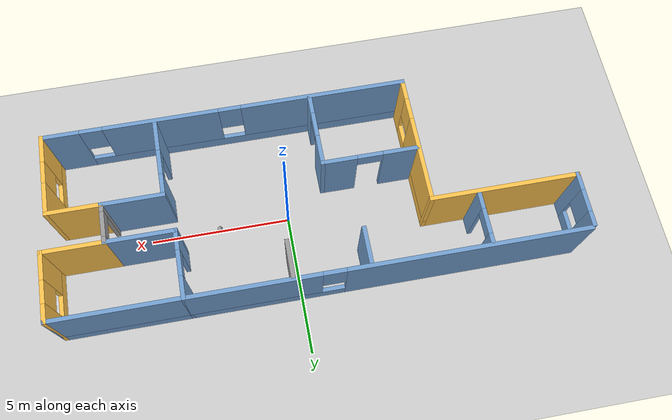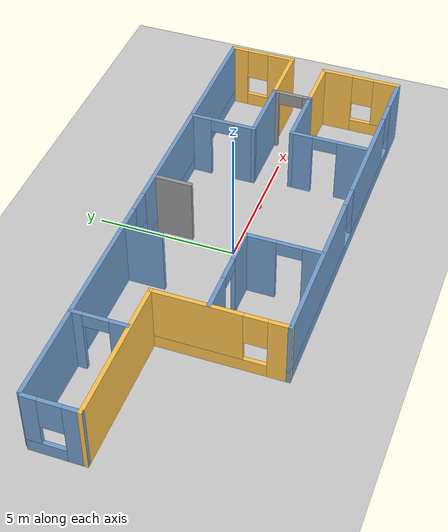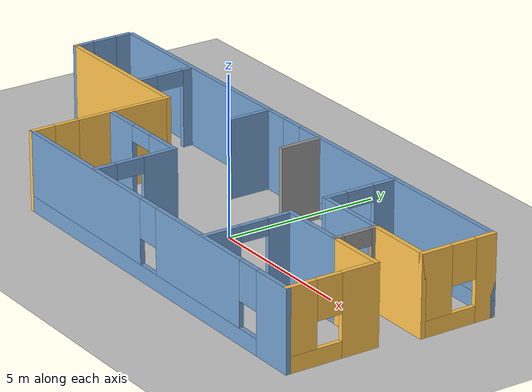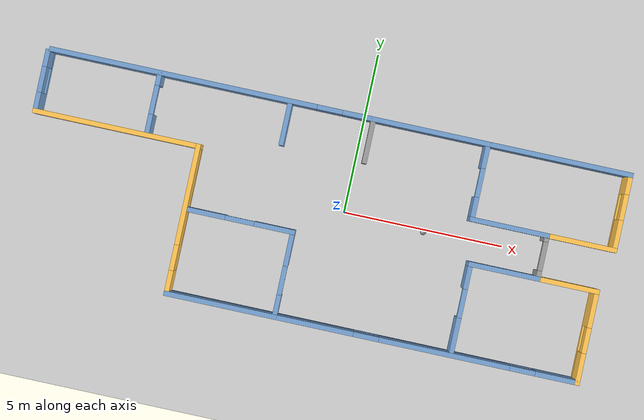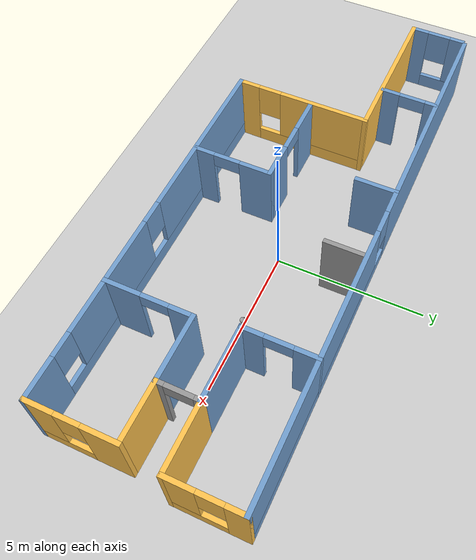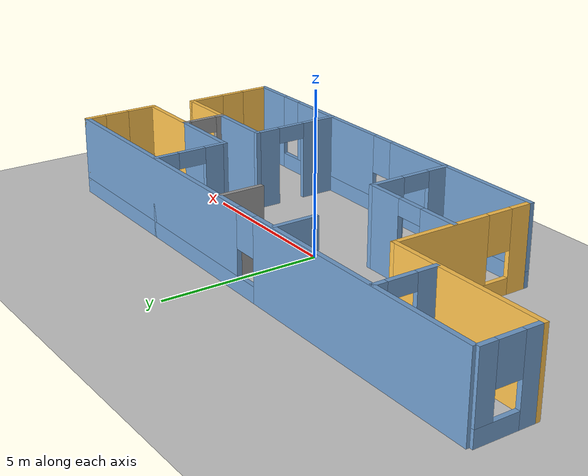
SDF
<sdf version="1.7">
 <world name="default">
  <light name="sun" type="directional">
   <pose>0 0 10 0 -0 0</pose>
   <diffuse>0.8 0.8 0.8 1</diffuse>
   <specular>0.2 0.2 0.2 1</specular>
   <attenuation>
    <range>1000</range>
    <constant>0.9</constant>
    <linear>0.01</linear>
    <quadratic>0.001</quadratic>
   </attenuation>
   <direction>-0.5 0.1 -0.9</direction>
   <spot><inner_angle>0</inner_angle><outer_angle>0</outer_angle><falloff>0</falloff></spot>
  </light>
  <model name="ground_plane">
   <static>1</static>
   <link name="link">
    <collision name="collision">
     <geometry><plane><normal>0 0 1</normal><size>100 100</size></plane></geometry>
     <surface>
      <contact><collide_bitmask>65535</collide_bitmask></contact>
      <friction><ode><mu>100</mu><mu2>50</mu2></ode></friction>
     </surface>
    </collision>
    <visual name="visual">
     <cast_shadows>0</cast_shadows>
     <geometry><plane><normal>0 0 1</normal><size>100 100</size></plane></geometry>
     <material>
      <script><uri>file://media/materials/scripts/gazebo.material</uri><name>Gazebo/Grey</name></script>
     </material>
    </visual>
   </link>
  </model>
  <gravity>0 0 -9.8</gravity>
  <magnetic_field>6e-06 2.3e-05 -4.2e-05</magnetic_field>
  <atmosphere type="adiabatic"/>
  <physics type="ode">
   <max_step_size>0.001</max_step_size>
   <real_time_factor>1</real_time_factor>
   <real_time_update_rate>1000</real_time_update_rate>
  </physics>
  <scene><ambient>0.4 0.4 0.4 1</ambient><background>0.7 0.7 0.7 1</background><shadows>1</shadows></scene>
  <spherical_coordinates>
   <surface_model>EARTH_WGS84</surface_model>
   <latitude_deg>0</latitude_deg>
   <longitude_deg>0</longitude_deg>
   <elevation>0</elevation>
   <heading_deg>0</heading_deg>
  </spherical_coordinates>
  <model name="house">
   <pose>-0.801405 -0.302287 0 0 -0 0</pose>
   <link name="Wall_0">
    <pose>0.05 3.275 0 0 -0 0</pose>
    <visual name="Wall_0_Visual_0">
     <pose>-4.94297 0 1.25 0 -0 0</pose>
     <geometry><box><size>8.36406 0.15 2.5</size></box></geometry>
     <material>
      <script><uri>file://media/materials/scripts/gazebo.material</uri><name>Gazebo/Grey</name></script>
      <ambient>0.447059 0.623529 0.811765 1</ambient>
     </material>
     <meta><layer>0</layer></meta>
    </visual>
    <collision name="Wall_0_Collision_0">
     <geometry><box><size>8.36406 0.15 2.5</size></box></geometry>
     <pose>-4.94297 0 1.25 0 -0 0</pose>
    </collision>
    <visual name="Wall_0_Visual_1">
     <pose>4.18203 0 0.25 0 -0 0</pose>
     <geometry><box><size>9.88594 0.15 0.5</size></box></geometry>
     <material>
      <script><uri>file://media/materials/scripts/gazebo.material</uri><name>Gazebo/Grey</name></script>
      <ambient>0.447059 0.623529 0.811765 1</ambient>
     </material>
     <meta><layer>0</layer></meta>
    </visual>
    <collision name="Wall_0_Collision_1">
     <geometry><box><size>9.88594 0.15 0.5</size></box></geometry>
     <pose>4.18203 0 0.25 0 -0 0</pose>
    </collision>
    <visual name="Wall_0_Visual_2">
     <pose>4.58203 0 1.5 0 -0 0</pose>
     <geometry><box><size>9.08594 0.15 2</size></box></geometry>
     <material>
      <script><uri>file://media/materials/scripts/gazebo.material</uri><name>Gazebo/Grey</name></script>
      <ambient>0.447059 0.623529 0.811765 1</ambient>
     </material>
     <meta><layer>0</layer></meta>
    </visual>
    <collision name="Wall_0_Collision_2">
     <geometry><box><size>9.08594 0.15 2</size></box></geometry>
     <pose>4.58203 0 1.5 0 -0 0</pose>
    </collision>
    <visual name="Wall_0_Visual_3">
     <pose>-0.360937 0 1.9 0 -0 0</pose>
     <geometry><box><size>0.8 0.15 1.2</size></box></geometry>
     <material>
      <script><uri>file://media/materials/scripts/gazebo.material</uri><name>Gazebo/Grey</name></script>
      <ambient>0.447059 0.623529 0.811765 1</ambient>
     </material>
     <meta><layer>0</layer></meta>
    </visual>
    <collision name="Wall_0_Collision_3">
     <geometry><box><size>0.8 0.15 1.2</size></box></geometry>
     <pose>-0.360937 0 1.9 0 -0 0</pose>
    </collision>
   </link>
   <link name="Wall_1">
    <pose>9.1 2.1 0 0 -0 -1.5708</pose>
    <visual name="Wall_1_Visual_0">
     <pose>-0.909661 0 1.25 0 -0 0</pose>
     <geometry><box><size>0.680679 0.15 2.5</size></box></geometry>
     <material>
      <script><uri>file://media/materials/scripts/gazebo.material</uri><name>Gazebo/Grey</name></script>
      <ambient>1 0.764706 0.305882 1</ambient>
     </material>
     <meta><layer>0</layer></meta>
    </visual>
    <collision name="Wall_1_Collision_0">
     <geometry><box><size>0.680679 0.15 2.5</size></box></geometry>
     <pose>-0.909661 0 1.25 0 -0 0</pose>
    </collision>
    <visual name="Wall_1_Visual_1">
     <pose>0.340339 0 0.25 0 -0 0</pose>
     <geometry><box><size>1.81932 0.15 0.5</size></box></geometry>
     <material>
      <script><uri>file://media/materials/scripts/gazebo.material</uri><name>Gazebo/Grey</name></script>
      <ambient>1 0.764706 0.305882 1</ambient>
     </material>
     <meta><layer>0</layer></meta>
    </visual>
    <collision name="Wall_1_Collision_1">
     <geometry><box><size>1.81932 0.15 0.5</size></box></geometry>
     <pose>0.340339 0 0.25 0 -0 0</pose>
    </collision>
    <visual name="Wall_1_Visual_2">
     <pose>0.740339 0 1.5 0 -0 0</pose>
     <geometry><box><size>1.01932 0.15 2</size></box></geometry>
     <material>
      <script><uri>file://media/materials/scripts/gazebo.material</uri><name>Gazebo/Grey</name></script>
      <ambient>1 0.764706 0.305882 1</ambient>
     </material>
     <meta><layer>0</layer></meta>
    </visual>
    <collision name="Wall_1_Collision_2">
     <geometry><box><size>1.01932 0.15 2</size></box></geometry>
     <pose>0.740339 0 1.5 0 -0 0</pose>
    </collision>
    <visual name="Wall_1_Visual_3">
     <pose>-0.169321 0 1.9 0 -0 0</pose>
     <geometry><box><size>0.8 0.15 1.2</size></box></geometry>
     <material>
      <script><uri>file://media/materials/scripts/gazebo.material</uri><name>Gazebo/Grey</name></script>
      <ambient>1 0.764706 0.305882 1</ambient>
     </material>
     <meta><layer>0</layer></meta>
    </visual>
    <collision name="Wall_1_Collision_3">
     <geometry><box><size>0.8 0.15 1.2</size></box></geometry>
     <pose>-0.169321 0 1.9 0 -0 0</pose>
    </collision>
   </link>
   <link name="Wall_11">
    <pose>-5.62092 2.30932 0 0 -0 1.5708</pose>
    <visual name="Wall_11_Visual_0">
     <pose>-0.664547 0 1.25 0 -0 0</pose>
     <geometry><box><size>0.670906 0.15 2.5</size></box></geometry>
     <material>
      <script><uri>file://media/materials/scripts/gazebo.material</uri><name>Gazebo/Grey</name></script>
      <ambient>0.447059 0.623529 0.811765 1</ambient>
     </material>
     <meta><layer>0</layer></meta>
    </visual>
    <collision name="Wall_11_Collision_0">
     <geometry><box><size>0.670906 0.15 2.5</size></box></geometry>
     <pose>-0.664547 0 1.25 0 -0 0</pose>
    </collision>
    <visual name="Wall_11_Visual_1">
     <pose>0.785453 0 1.25 0 -0 0</pose>
     <geometry><box><size>0.429094 0.15 2.5</size></box></geometry>
     <material>
      <script><uri>file://media/materials/scripts/gazebo.material</uri><name>Gazebo/Grey</name></script>
      <ambient>0.447059 0.623529 0.811765 1</ambient>
     </material>
     <meta><layer>0</layer></meta>
    </visual>
    <collision name="Wall_11_Collision_1">
     <geometry><box><size>0.429094 0.15 2.5</size></box></geometry>
     <pose>0.785453 0 1.25 0 -0 0</pose>
    </collision>
    <visual name="Wall_11_Visual_2">
     <pose>0.120906 0 2.25 0 -0 0</pose>
     <geometry><box><size>0.9 0.15 0.5</size></box></geometry>
     <material>
      <script><uri>file://media/materials/scripts/gazebo.material</uri><name>Gazebo/Grey</name></script>
      <ambient>0.447059 0.623529 0.811765 1</ambient>
     </material>
     <meta><layer>0</layer></meta>
    </visual>
    <collision name="Wall_11_Collision_2">
     <geometry><box><size>0.9 0.15 0.5</size></box></geometry>
     <pose>0.120906 0 2.25 0 -0 0</pose>
    </collision>
   </link>
   <link name="Wall_13">
    <collision name="Wall_13_Collision">
     <geometry><box><size>2.5 0.15 2.5</size></box></geometry>
     <pose>0 0 1.25 0 -0 0</pose>
    </collision>
    <visual name="Wall_13_Visual">
     <pose>0 0 1.25 0 -0 0</pose>
     <geometry><box><size>2.5 0.15 2.5</size></box></geometry>
     <material>
      <script><uri>file://media/materials/scripts/gazebo.material</uri><name>Gazebo/Grey</name></script>
      <ambient>0.447059 0.623529 0.811765 1</ambient>
     </material>
     <meta><layer>0</layer></meta>
    </visual>
    <pose>5.825 0.925 0 0 -0 3.14159</pose>
   </link>
   <link name="Wall_14">
    <pose>4.65 2.1 0 0 -0 1.5708</pose>
    <visual name="Wall_14_Visual_0">
     <pose>-0.865907 0 1.25 0 -0 0</pose>
     <geometry><box><size>0.768186 0.15 2.5</size></box></geometry>
     <material>
      <script><uri>file://media/materials/scripts/gazebo.material</uri><name>Gazebo/Grey</name></script>
      <ambient>0.447059 0.623529 0.811765 1</ambient>
     </material>
     <meta><layer>0</layer></meta>
    </visual>
    <collision name="Wall_14_Collision_0">
     <geometry><box><size>0.768186 0.15 2.5</size></box></geometry>
     <pose>-0.865907 0 1.25 0 -0 0</pose>
    </collision>
    <visual name="Wall_14_Visual_1">
     <pose>0.834093 0 1.25 0 -0 0</pose>
     <geometry><box><size>0.831814 0.15 2.5</size></box></geometry>
     <material>
      <script><uri>file://media/materials/scripts/gazebo.material</uri><name>Gazebo/Grey</name></script>
      <ambient>0.447059 0.623529 0.811765 1</ambient>
     </material>
     <meta><layer>0</layer></meta>
    </visual>
    <collision name="Wall_14_Collision_1">
     <geometry><box><size>0.831814 0.15 2.5</size></box></geometry>
     <pose>0.834093 0 1.25 0 -0 0</pose>
    </collision>
    <visual name="Wall_14_Visual_2">
     <pose>-0.031814 0 2.25 0 -0 0</pose>
     <geometry><box><size>0.9 0.15 0.5</size></box></geometry>
     <material>
      <script><uri>file://media/materials/scripts/gazebo.material</uri><name>Gazebo/Grey</name></script>
      <ambient>0.447059 0.623529 0.811765 1</ambient>
     </material>
     <meta><layer>0</layer></meta>
    </visual>
    <collision name="Wall_14_Collision_2">
     <geometry><box><size>0.9 0.15 0.5</size></box></geometry>
     <pose>-0.031814 0 2.25 0 -0 0</pose>
    </collision>
   </link>
   <link name="Wall_16">
    <pose>-2.29661 -0.627033 0 0 -0 0</pose>
    <visual name="Wall_16_Visual_0">
     <pose>-1.09273 0 1.25 0 -0 0</pose>
     <geometry><box><size>1.31454 0.15 2.5</size></box></geometry>
     <material>
      <script><uri>file://media/materials/scripts/gazebo.material</uri><name>Gazebo/Grey</name></script>
      <ambient>0.447059 0.623529 0.811765 1</ambient>
     </material>
     <meta><layer>0</layer></meta>
    </visual>
    <collision name="Wall_16_Collision_0">
     <geometry><box><size>1.31454 0.15 2.5</size></box></geometry>
     <pose>-1.09273 0 1.25 0 -0 0</pose>
    </collision>
    <visual name="Wall_16_Visual_1">
     <pose>1.10727 0 1.25 0 -0 0</pose>
     <geometry><box><size>1.28546 0.15 2.5</size></box></geometry>
     <material>
      <script><uri>file://media/materials/scripts/gazebo.material</uri><name>Gazebo/Grey</name></script>
      <ambient>0.447059 0.623529 0.811765 1</ambient>
     </material>
     <meta><layer>0</layer></meta>
    </visual>
    <collision name="Wall_16_Collision_1">
     <geometry><box><size>1.28546 0.15 2.5</size></box></geometry>
     <pose>1.10727 0 1.25 0 -0 0</pose>
    </collision>
    <visual name="Wall_16_Visual_2">
     <pose>0.01454 0 2.25 0 -0 0</pose>
     <geometry><box><size>0.9 0.15 0.5</size></box></geometry>
     <material>
      <script><uri>file://media/materials/scripts/gazebo.material</uri><name>Gazebo/Grey</name></script>
      <ambient>0.447059 0.623529 0.811765 1</ambient>
     </material>
     <meta><layer>0</layer></meta>
    </visual>
    <collision name="Wall_16_Collision_2">
     <geometry><box><size>0.9 0.15 0.5</size></box></geometry>
     <pose>0.01454 0 2.25 0 -0 0</pose>
    </collision>
   </link>
   <link name="Wall_17">
    <pose>-0.621607 -1.92703 0 0 -0 -1.5708</pose>
    <visual name="Wall_17_Visual_0">
     <pose>-0.808241 0 1.25 0 -0 0</pose>
     <geometry><box><size>1.13352 0.15 2.5</size></box></geometry>
     <material>
      <script><uri>file://media/materials/scripts/gazebo.material</uri><name>Gazebo/Grey</name></script>
      <ambient>0.447059 0.623529 0.811765 1</ambient>
     </material>
     <meta><layer>0</layer></meta>
    </visual>
    <collision name="Wall_17_Collision_0">
     <geometry><box><size>1.13352 0.15 2.5</size></box></geometry>
     <pose>-0.808241 0 1.25 0 -0 0</pose>
    </collision>
    <visual name="Wall_17_Visual_1">
     <pose>1.01676 0 1.25 0 -0 0</pose>
     <geometry><box><size>0.716482 0.15 2.5</size></box></geometry>
     <material>
      <script><uri>file://media/materials/scripts/gazebo.material</uri><name>Gazebo/Grey</name></script>
      <ambient>0.447059 0.623529 0.811765 1</ambient>
     </material>
     <meta><layer>0</layer></meta>
    </visual>
    <collision name="Wall_17_Collision_1">
     <geometry><box><size>0.716482 0.15 2.5</size></box></geometry>
     <pose>1.01676 0 1.25 0 -0 0</pose>
    </collision>
    <visual name="Wall_17_Visual_2">
     <pose>0.208518 0 2.25 0 -0 0</pose>
     <geometry><box><size>0.9 0.15 0.5</size></box></geometry>
     <material>
      <script><uri>file://media/materials/scripts/gazebo.material</uri><name>Gazebo/Grey</name></script>
      <ambient>0.447059 0.623529 0.811765 1</ambient>
     </material>
     <meta><layer>0</layer></meta>
    </visual>
    <collision name="Wall_17_Collision_2">
     <geometry><box><size>0.9 0.15 0.5</size></box></geometry>
     <pose>0.208518 0 2.25 0 -0 0</pose>
    </collision>
   </link>
   <link name="Wall_19">
    <collision name="Wall_19_Collision">
     <geometry><box><size>2.25 0.15 2.5</size></box></geometry>
     <pose>0 0 1.25 0 -0 0</pose>
    </collision>
    <visual name="Wall_19_Visual">
     <pose>0 0 1.25 0 -0 0</pose>
     <geometry><box><size>2.25 0.15 2.5</size></box></geometry>
     <material>
      <script><uri>file://media/materials/scripts/gazebo.material</uri><name>Gazebo/Grey</name></script>
      <ambient>0.447059 0.623529 0.811765 1</ambient>
     </material>
     <meta><layer>0</layer></meta>
    </visual>
    <pose>5.95 -0.425 0 0 -0 3.14159</pose>
   </link>
   <link name="Wall_2">
    <collision name="Wall_2_Collision">
     <geometry><box><size>2.25 0.15 2.5</size></box></geometry>
     <pose>0 0 1.25 0 -0 0</pose>
    </collision>
    <visual name="Wall_2_Visual">
     <pose>0 0 1.25 0 -0 0</pose>
     <geometry><box><size>2.25 0.15 2.5</size></box></geometry>
     <material>
      <script><uri>file://media/materials/scripts/gazebo.material</uri><name>Gazebo/Grey</name></script>
      <ambient>1 0.764706 0.305882 1</ambient>
     </material>
     <meta><layer>0</layer></meta>
    </visual>
    <pose>8.05 0.925 0 0 -0 3.14159</pose>
   </link>
   <link name="Wall_20">
    <pose>4.9 -1.85 0 0 -0 -1.5708</pose>
    <visual name="Wall_20_Visual_0">
     <pose>-1.07359 0 1.25 0 -0 0</pose>
     <geometry><box><size>0.852825 0.15 2.5</size></box></geometry>
     <material>
      <script><uri>file://media/materials/scripts/gazebo.material</uri><name>Gazebo/Grey</name></script>
      <ambient>0.447059 0.623529 0.811765 1</ambient>
     </material>
     <meta><layer>0</layer></meta>
    </visual>
    <collision name="Wall_20_Collision_0">
     <geometry><box><size>0.852825 0.15 2.5</size></box></geometry>
     <pose>-1.07359 0 1.25 0 -0 0</pose>
    </collision>
    <visual name="Wall_20_Visual_1">
     <pose>0.876412 0 1.25 0 -0 0</pose>
     <geometry><box><size>1.24717 0.15 2.5</size></box></geometry>
     <material>
      <script><uri>file://media/materials/scripts/gazebo.material</uri><name>Gazebo/Grey</name></script>
      <ambient>0.447059 0.623529 0.811765 1</ambient>
     </material>
     <meta><layer>0</layer></meta>
    </visual>
    <collision name="Wall_20_Collision_1">
     <geometry><box><size>1.24717 0.15 2.5</size></box></geometry>
     <pose>0.876412 0 1.25 0 -0 0</pose>
    </collision>
    <visual name="Wall_20_Visual_2">
     <pose>-0.197175 0 2.25 0 -0 0</pose>
     <geometry><box><size>0.9 0.15 0.5</size></box></geometry>
     <material>
      <script><uri>file://media/materials/scripts/gazebo.material</uri><name>Gazebo/Grey</name></script>
      <ambient>0.447059 0.623529 0.811765 1</ambient>
     </material>
     <meta><layer>0</layer></meta>
    </visual>
    <collision name="Wall_20_Collision_2">
     <geometry><box><size>0.9 0.15 0.5</size></box></geometry>
     <pose>-0.197175 0 2.25 0 -0 0</pose>
    </collision>
   </link>
   <link name="Wall_22">
    <collision name="Wall_22_Collision">
     <geometry><box><size>1.45977 0.15 2.5</size></box></geometry>
     <pose>0 0 1.25 0 -0 0</pose>
    </collision>
    <visual name="Wall_22_Visual">
     <pose>0 0 1.25 0 -0 0</pose>
     <geometry><box><size>1.45977 0.15 2.5</size></box></geometry>
     <material>
      <script><uri>file://media/materials/scripts/gazebo.material</uri><name>Gazebo/Grey</name></script>
      <ambient>0.447059 0.623529 0.811765 1</ambient>
     </material>
     <meta><layer>0</layer></meta>
    </visual>
    <pose>-1.53787 2.62011 0 0 -0 -1.5708</pose>
   </link>
   <link name="Wall_24">
    <collision name="Wall_24_Collision">
     <geometry><box><size>1.45977 0.15 2.5</size></box></geometry>
     <pose>0 0 1.25 0 -0 0</pose>
    </collision>
    <visual name="Wall_24_Visual">
     <pose>0 0 1.25 0 -0 0</pose>
     <geometry><box><size>1.45977 0.15 2.5</size></box></geometry>
     <material>
      <script><uri>file://media/materials/scripts/gazebo.material</uri><name>Gazebo/Grey</name></script>
      <ambient>1 1 1 1</ambient>
     </material>
     <meta><layer>0</layer></meta>
    </visual>
    <pose>1.06214 2.62011 0 0 -0 1.5708</pose>
   </link>
   <link name="Wall_3">
    <pose>7 0.25 0 0 -0 -1.5708</pose>
    <visual name="Wall_3_Visual_0">
     <pose>-0.614039 0 1.25 0 -0 0</pose>
     <geometry><box><size>0.271922 0.15 2.5</size></box></geometry>
     <material>
      <script><uri>file://media/materials/scripts/gazebo.material</uri><name>Gazebo/Grey</name></script>
      <ambient>1 1 1 1</ambient>
     </material>
     <meta><layer>0</layer></meta>
    </visual>
    <collision name="Wall_3_Collision_0">
     <geometry><box><size>0.271922 0.15 2.5</size></box></geometry>
     <pose>-0.614039 0 1.25 0 -0 0</pose>
    </collision>
    <visual name="Wall_3_Visual_1">
     <pose>0.585961 0 1.25 0 -0 0</pose>
     <geometry><box><size>0.328078 0.15 2.5</size></box></geometry>
     <material>
      <script><uri>file://media/materials/scripts/gazebo.material</uri><name>Gazebo/Grey</name></script>
      <ambient>1 1 1 1</ambient>
     </material>
     <meta><layer>0</layer></meta>
    </visual>
    <collision name="Wall_3_Collision_1">
     <geometry><box><size>0.328078 0.15 2.5</size></box></geometry>
     <pose>0.585961 0 1.25 0 -0 0</pose>
    </collision>
    <visual name="Wall_3_Visual_2">
     <pose>-0.028078 0 2.25 0 -0 0</pose>
     <geometry><box><size>0.9 0.15 0.5</size></box></geometry>
     <material>
      <script><uri>file://media/materials/scripts/gazebo.material</uri><name>Gazebo/Grey</name></script>
      <ambient>1 1 1 1</ambient>
     </material>
     <meta><layer>0</layer></meta>
    </visual>
    <collision name="Wall_3_Collision_2">
     <geometry><box><size>0.9 0.15 0.5</size></box></geometry>
     <pose>-0.028078 0 2.25 0 -0 0</pose>
    </collision>
   </link>
   <link name="Wall_4">
    <collision name="Wall_4_Collision">
     <geometry><box><size>2 0.15 2.5</size></box></geometry>
     <pose>0 0 1.25 0 -0 0</pose>
    </collision>
    <visual name="Wall_4_Visual">
     <pose>0 0 1.25 0 -0 0</pose>
     <geometry><box><size>2 0.15 2.5</size></box></geometry>
     <material>
      <script><uri>file://media/materials/scripts/gazebo.material</uri><name>Gazebo/Grey</name></script>
      <ambient>1 0.764706 0.305882 1</ambient>
     </material>
     <meta><layer>0</layer></meta>
    </visual>
    <pose>7.925 -0.425 0 0 -0 0</pose>
   </link>
   <link name="Wall_5">
    <pose>8.85 -1.85 0 0 -0 -1.5708</pose>
    <visual name="Wall_5_Visual_0">
     <pose>-0.897736 0 1.25 0 -0 0</pose>
     <geometry><box><size>1.20453 0.15 2.5</size></box></geometry>
     <material>
      <script><uri>file://media/materials/scripts/gazebo.material</uri><name>Gazebo/Grey</name></script>
      <ambient>1 0.764706 0.305882 1</ambient>
     </material>
     <meta><layer>0</layer></meta>
    </visual>
    <collision name="Wall_5_Collision_0">
     <geometry><box><size>1.20453 0.15 2.5</size></box></geometry>
     <pose>-0.897736 0 1.25 0 -0 0</pose>
    </collision>
    <visual name="Wall_5_Visual_1">
     <pose>0.602264 0 0.25 0 -0 0</pose>
     <geometry><box><size>1.79547 0.15 0.5</size></box></geometry>
     <material>
      <script><uri>file://media/materials/scripts/gazebo.material</uri><name>Gazebo/Grey</name></script>
      <ambient>1 0.764706 0.305882 1</ambient>
     </material>
     <meta><layer>0</layer></meta>
    </visual>
    <collision name="Wall_5_Collision_1">
     <geometry><box><size>1.79547 0.15 0.5</size></box></geometry>
     <pose>0.602264 0 0.25 0 -0 0</pose>
    </collision>
    <visual name="Wall_5_Visual_2">
     <pose>1.00226 0 1.5 0 -0 0</pose>
     <geometry><box><size>0.995472 0.15 2</size></box></geometry>
     <material>
      <script><uri>file://media/materials/scripts/gazebo.material</uri><name>Gazebo/Grey</name></script>
      <ambient>1 0.764706 0.305882 1</ambient>
     </material>
     <meta><layer>0</layer></meta>
    </visual>
    <collision name="Wall_5_Collision_2">
     <geometry><box><size>0.995472 0.15 2</size></box></geometry>
     <pose>1.00226 0 1.5 0 -0 0</pose>
    </collision>
    <visual name="Wall_5_Visual_3">
     <pose>0.104528 0 1.9 0 -0 0</pose>
     <geometry><box><size>0.8 0.15 1.2</size></box></geometry>
     <material>
      <script><uri>file://media/materials/scripts/gazebo.material</uri><name>Gazebo/Grey</name></script>
      <ambient>1 0.764706 0.305882 1</ambient>
     </material>
     <meta><layer>0</layer></meta>
    </visual>
    <collision name="Wall_5_Collision_3">
     <geometry><box><size>0.8 0.15 1.2</size></box></geometry>
     <pose>0.104528 0 1.9 0 -0 0</pose>
    </collision>
   </link>
   <link name="Wall_6">
    <pose>2.425 -3.275 0 0 -0 3.14159</pose>
    <visual name="Wall_6_Visual_0">
     <pose>-5.80304 0 1.25 0 -0 0</pose>
     <geometry><box><size>1.39392 0.15 2.5</size></box></geometry>
     <material>
      <script><uri>file://media/materials/scripts/gazebo.material</uri><name>Gazebo/Grey</name></script>
      <ambient>0.447059 0.623529 0.811765 1</ambient>
     </material>
     <meta><layer>0</layer></meta>
    </visual>
    <collision name="Wall_6_Collision_0">
     <geometry><box><size>1.39392 0.15 2.5</size></box></geometry>
     <pose>-5.80304 0 1.25 0 -0 0</pose>
    </collision>
    <visual name="Wall_6_Visual_1">
     <pose>0.696958 0 0.25 0 -0 0</pose>
     <geometry><box><size>11.6061 0.15 0.5</size></box></geometry>
     <material>
      <script><uri>file://media/materials/scripts/gazebo.material</uri><name>Gazebo/Grey</name></script>
      <ambient>0.447059 0.623529 0.811765 1</ambient>
     </material>
     <meta><layer>0</layer></meta>
    </visual>
    <collision name="Wall_6_Collision_1">
     <geometry><box><size>11.6061 0.15 0.5</size></box></geometry>
     <pose>0.696958 0 0.25 0 -0 0</pose>
    </collision>
    <visual name="Wall_6_Visual_2">
     <pose>-2.26229 0 1.5 0 -0 0</pose>
     <geometry><box><size>4.0876 0.15 2</size></box></geometry>
     <material>
      <script><uri>file://media/materials/scripts/gazebo.material</uri><name>Gazebo/Grey</name></script>
      <ambient>0.447059 0.623529 0.811765 1</ambient>
     </material>
     <meta><layer>0</layer></meta>
    </visual>
    <collision name="Wall_6_Collision_2">
     <geometry><box><size>4.0876 0.15 2</size></box></geometry>
     <pose>-2.26229 0 1.5 0 -0 0</pose>
    </collision>
    <visual name="Wall_6_Visual_3">
     <pose>3.54076 0 1.5 0 -0 0</pose>
     <geometry><box><size>5.91849 0.15 2</size></box></geometry>
     <material>
      <script><uri>file://media/materials/scripts/gazebo.material</uri><name>Gazebo/Grey</name></script>
      <ambient>0.447059 0.623529 0.811765 1</ambient>
     </material>
     <meta><layer>0</layer></meta>
    </visual>
    <collision name="Wall_6_Collision_3">
     <geometry><box><size>5.91849 0.15 2</size></box></geometry>
     <pose>3.54076 0 1.5 0 -0 0</pose>
    </collision>
    <visual name="Wall_6_Visual_4">
     <pose>-4.70608 0 1.9 0 -0 0</pose>
     <geometry><box><size>0.8 0.15 1.2</size></box></geometry>
     <material>
      <script><uri>file://media/materials/scripts/gazebo.material</uri><name>Gazebo/Grey</name></script>
      <ambient>0.447059 0.623529 0.811765 1</ambient>
     </material>
     <meta><layer>0</layer></meta>
    </visual>
    <collision name="Wall_6_Collision_4">
     <geometry><box><size>0.8 0.15 1.2</size></box></geometry>
     <pose>-4.70608 0 1.9 0 -0 0</pose>
    </collision>
    <visual name="Wall_6_Visual_5">
     <pose>0.181513 0 1.9 0 -0 0</pose>
     <geometry><box><size>0.8 0.15 1.2</size></box></geometry>
     <material>
      <script><uri>file://media/materials/scripts/gazebo.material</uri><name>Gazebo/Grey</name></script>
      <ambient>0.447059 0.623529 0.811765 1</ambient>
     </material>
     <meta><layer>0</layer></meta>
    </visual>
    <collision name="Wall_6_Collision_5">
     <geometry><box><size>0.8 0.15 1.2</size></box></geometry>
     <pose>0.181513 0 1.9 0 -0 0</pose>
    </collision>
   </link>
   <link name="Wall_7">
    <pose>-4 -0.975 0 0 -0 1.5708</pose>
    <visual name="Wall_7_Visual_0">
     <pose>-1.97783 0 1.25 0 -0 0</pose>
     <geometry><box><size>0.794335 0.15 2.5</size></box></geometry>
     <material>
      <script><uri>file://media/materials/scripts/gazebo.material</uri><name>Gazebo/Grey</name></script>
      <ambient>1 0.764706 0.305882 1</ambient>
     </material>
     <meta><layer>0</layer></meta>
    </visual>
    <collision name="Wall_7_Collision_0">
     <geometry><box><size>0.794335 0.15 2.5</size></box></geometry>
     <pose>-1.97783 0 1.25 0 -0 0</pose>
    </collision>
    <visual name="Wall_7_Visual_1">
     <pose>0.397168 0 0.25 0 -0 0</pose>
     <geometry><box><size>3.95567 0.15 0.5</size></box></geometry>
     <material>
      <script><uri>file://media/materials/scripts/gazebo.material</uri><name>Gazebo/Grey</name></script>
      <ambient>1 0.764706 0.305882 1</ambient>
     </material>
     <meta><layer>0</layer></meta>
    </visual>
    <collision name="Wall_7_Collision_1">
     <geometry><box><size>3.95567 0.15 0.5</size></box></geometry>
     <pose>0.397168 0 0.25 0 -0 0</pose>
    </collision>
    <visual name="Wall_7_Visual_2">
     <pose>0.797168 0 1.5 0 -0 0</pose>
     <geometry><box><size>3.15566 0.15 2</size></box></geometry>
     <material>
      <script><uri>file://media/materials/scripts/gazebo.material</uri><name>Gazebo/Grey</name></script>
      <ambient>1 0.764706 0.305882 1</ambient>
     </material>
     <meta><layer>0</layer></meta>
    </visual>
    <collision name="Wall_7_Collision_2">
     <geometry><box><size>3.15566 0.15 2</size></box></geometry>
     <pose>0.797168 0 1.5 0 -0 0</pose>
    </collision>
    <visual name="Wall_7_Visual_3">
     <pose>-1.18067 0 1.9 0 -0 0</pose>
     <geometry><box><size>0.8 0.15 1.2</size></box></geometry>
     <material>
      <script><uri>file://media/materials/scripts/gazebo.material</uri><name>Gazebo/Grey</name></script>
      <ambient>1 0.764706 0.305882 1</ambient>
     </material>
     <meta><layer>0</layer></meta>
    </visual>
    <collision name="Wall_7_Collision_3">
     <geometry><box><size>0.8 0.15 1.2</size></box></geometry>
     <pose>-1.18067 0 1.9 0 -0 0</pose>
    </collision>
   </link>
   <link name="Wall_8">
    <collision name="Wall_8_Collision">
     <geometry><box><size>5.25 0.15 2.5</size></box></geometry>
     <pose>0 0 1.25 0 -0 0</pose>
    </collision>
    <visual name="Wall_8_Visual">
     <pose>0 0 1.25 0 -0 0</pose>
     <geometry><box><size>5.25 0.15 2.5</size></box></geometry>
     <material>
      <script><uri>file://media/materials/scripts/gazebo.material</uri><name>Gazebo/Grey</name></script>
      <ambient>1 0.764706 0.305882 1</ambient>
     </material>
     <meta><layer>0</layer></meta>
    </visual>
    <pose>-6.55 1.325 0 0 -0 3.14159</pose>
   </link>
   <link name="Wall_9">
    <pose>-9.1 2.25 0 0 -0 1.5708</pose>
    <visual name="Wall_9_Visual_0">
     <pose>-0.670226 0 1.25 0 -0 0</pose>
     <geometry><box><size>0.659549 0.15 2.5</size></box></geometry>
     <material>
      <script><uri>file://media/materials/scripts/gazebo.material</uri><name>Gazebo/Grey</name></script>
      <ambient>0.447059 0.623529 0.811765 1</ambient>
     </material>
     <meta><layer>0</layer></meta>
    </visual>
    <collision name="Wall_9_Collision_0">
     <geometry><box><size>0.659549 0.15 2.5</size></box></geometry>
     <pose>-0.670226 0 1.25 0 -0 0</pose>
    </collision>
    <visual name="Wall_9_Visual_1">
     <pose>0.329774 0 0.25 0 -0 0</pose>
     <geometry><box><size>1.34045 0.15 0.5</size></box></geometry>
     <material>
      <script><uri>file://media/materials/scripts/gazebo.material</uri><name>Gazebo/Grey</name></script>
      <ambient>0.447059 0.623529 0.811765 1</ambient>
     </material>
     <meta><layer>0</layer></meta>
    </visual>
    <collision name="Wall_9_Collision_1">
     <geometry><box><size>1.34045 0.15 0.5</size></box></geometry>
     <pose>0.329774 0 0.25 0 -0 0</pose>
    </collision>
    <visual name="Wall_9_Visual_2">
     <pose>0.729774 0 1.5 0 -0 0</pose>
     <geometry><box><size>0.540451 0.15 2</size></box></geometry>
     <material>
      <script><uri>file://media/materials/scripts/gazebo.material</uri><name>Gazebo/Grey</name></script>
      <ambient>0.447059 0.623529 0.811765 1</ambient>
     </material>
     <meta><layer>0</layer></meta>
    </visual>
    <collision name="Wall_9_Collision_2">
     <geometry><box><size>0.540451 0.15 2</size></box></geometry>
     <pose>0.729774 0 1.5 0 -0 0</pose>
    </collision>
    <visual name="Wall_9_Visual_3">
     <pose>0.059549 0 1.9 0 -0 0</pose>
     <geometry><box><size>0.8 0.15 1.2</size></box></geometry>
     <material>
      <script><uri>file://media/materials/scripts/gazebo.material</uri><name>Gazebo/Grey</name></script>
      <ambient>0.447059 0.623529 0.811765 1</ambient>
     </material>
     <meta><layer>0</layer></meta>
    </visual>
    <collision name="Wall_9_Collision_3">
     <geometry><box><size>0.8 0.15 1.2</size></box></geometry>
     <pose>0.059549 0 1.9 0 -0 0</pose>
    </collision>
   </link>
   <static>1</static>
  </model>
  <model name="my_ball">
   <link name="link_0">
    <inertial>
     <mass>1</mass>
     <inertia><ixx>0.1</ixx><ixy>0</ixy><ixz>0</ixz><iyy>0.1</iyy><iyz>0</iyz><izz>0.1</izz></inertia>
    </inertial>
    <visual name="visual">
     <geometry><sphere><radius>0.1</radius></sphere></geometry>
     <material>
      <lighting>1</lighting>
      <script><uri>file://media/materials/scripts/gazebo.material</uri><name>Gazebo/Grey</name></script>
      <shader type="pixel"><normal_map>__default__</normal_map></shader>
      <ambient>1 1 1 1</ambient>
      <diffuse>1 1 1 1</diffuse>
      <specular>1 1 1 1</specular>
      <emissive>1 1 1 1</emissive>
     </material>
    </visual>
    <collision name="collision">
     <geometry><sphere><radius>0.1</radius></sphere></geometry>
     <surface>
      <friction>
       <ode><mu>1</mu><mu2>1</mu2><fdir1>0 0 0</fdir1><slip1>0</slip1><slip2>0</slip2></ode>
       <torsional>
        <coefficient>1</coefficient>
        <patch_radius>0</patch_radius>
        <surface_radius>0</surface_radius>
        <use_patch_radius>1</use_patch_radius>
        <ode><slip>0</slip></ode>
       </torsional>
      </friction>
      <bounce><restitution_coefficient>0</restitution_coefficient><threshold>1e+06</threshold></bounce>
      <contact>
       <collide_without_contact>0</collide_without_contact>
       <collide_without_contact_bitmask>1</collide_without_contact_bitmask>
       <collide_bitmask>1</collide_bitmask>
       <ode>
        <soft_cfm>0</soft_cfm>
        <soft_erp>0.2</soft_erp>
        <kp>1e+13</kp>
        <kd>1</kd>
        <max_vel>0.01</max_vel>
        <min_depth>0</min_depth>
       </ode>
       <bullet>
        <split_impulse>1</split_impulse>
        <split_impulse_penetration_threshold>-0.01</split_impulse_penetration_threshold>
        <soft_cfm>0</soft_cfm>
        <soft_erp>0.2</soft_erp>
        <kp>1e+13</kp>
        <kd>1</kd>
       </bullet>
      </contact>
     </surface>
    </collision>
   </link>
   <static>0</static>
   <pose>2.52488 -0.071579 0.1 0 -0 0</pose>
  </model>
 </world>
</sdf>
